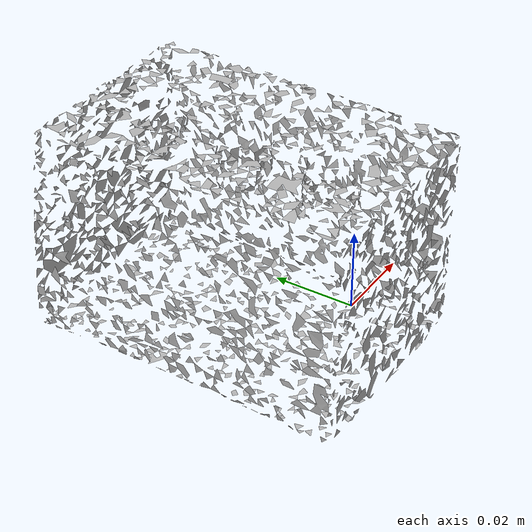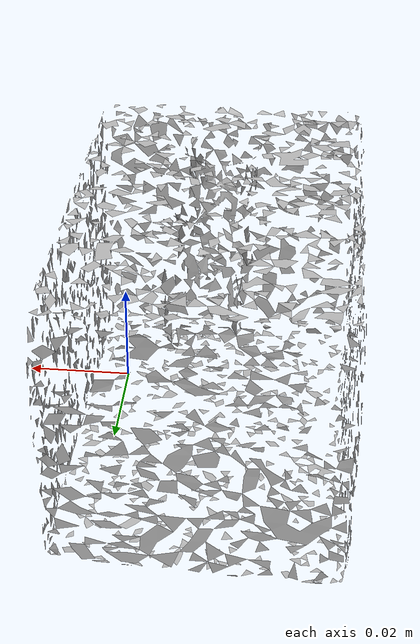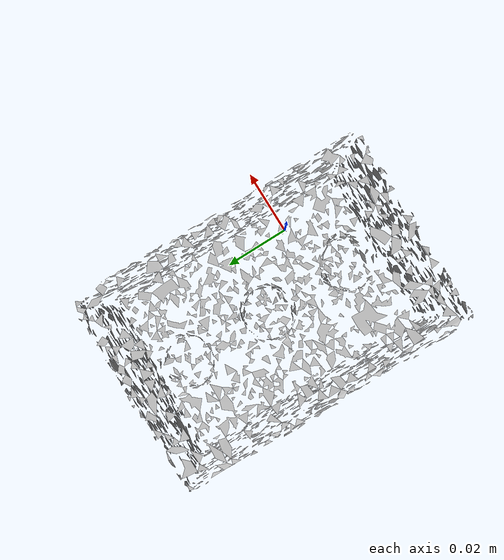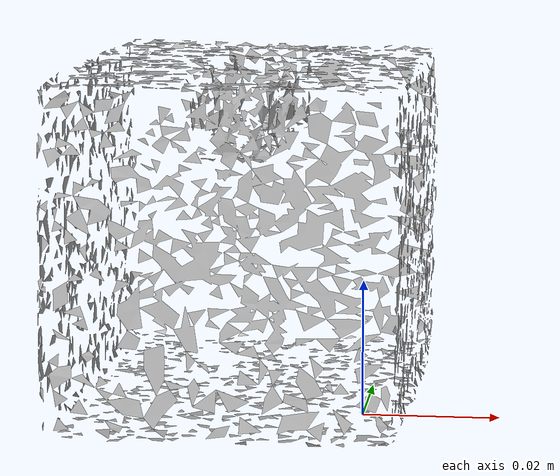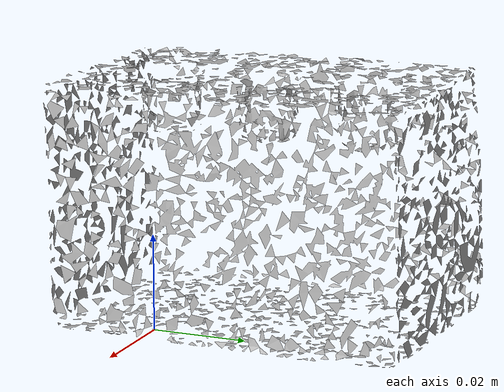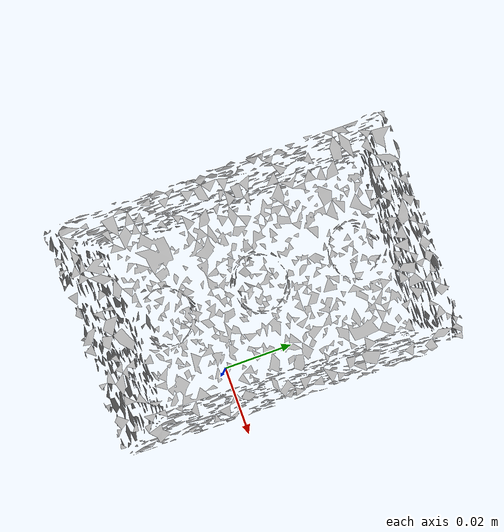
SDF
<?xml version='1.0'?>
<sdf version="1.4">
  <model name="foam_brick">
    <static>false</static>
    <link name="link">
      <inertial>
        <pose>-0.01862531574247814 0.016954877906830403 0.0246441505284604 1.207143192851523 1.5217568314045977 -0.3788712481958979</pose>
        <mass>0.0001849265625643083</mass>
        <inertia>
          <ixx>1.284387350358337e-07</ixx>
          <ixy>-3.0844677982639514e-25</ixy>
          <ixz>-1.4545173206009998e-23</ixz>
          <iyy>1.252294349283672e-07</iyy>
          <iyz>2.521655032447048e-26</iyz>
          <izz>7.768642722539467e-08</izz>
        </inertia>
      </inertial>
      <collision name="collision">
        <geometry>
          <mesh>
            <!-- Use a downsampled mesh for collisions -->
            <uri>model://061_foam_brick/downsampled.obj</uri>
	        </mesh>
        </geometry>
        <surface>
      </surface>
      </collision>
      <visual name="visual">
        <geometry>
          <mesh>
            <uri>model://061_foam_brick/google_16k/textured.obj</uri>
	        </mesh>
        </geometry>
        <material>
          <script>
            <uri>model://061_foam_brick/foam_brick.material</uri>
            <name>foam_brick</name>
          </script>
        </material>
      </visual>
    </link>
  </model>
</sdf>
